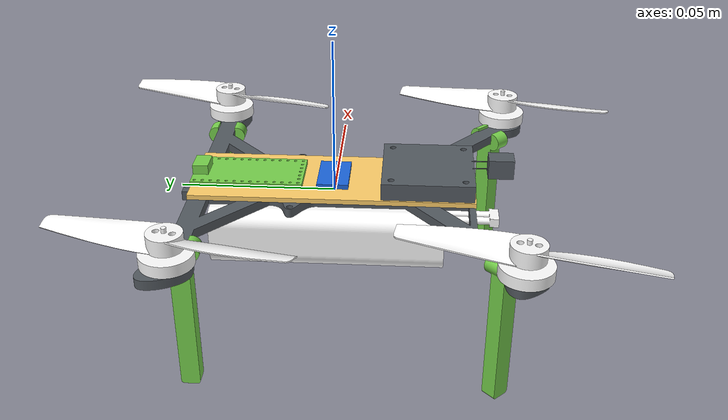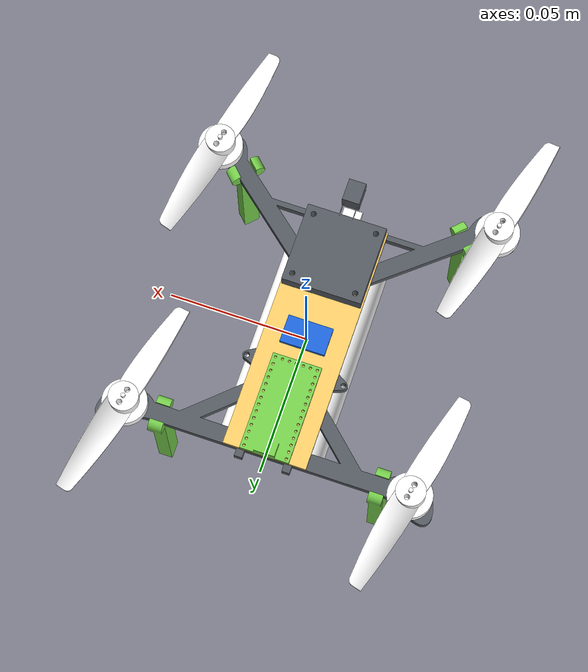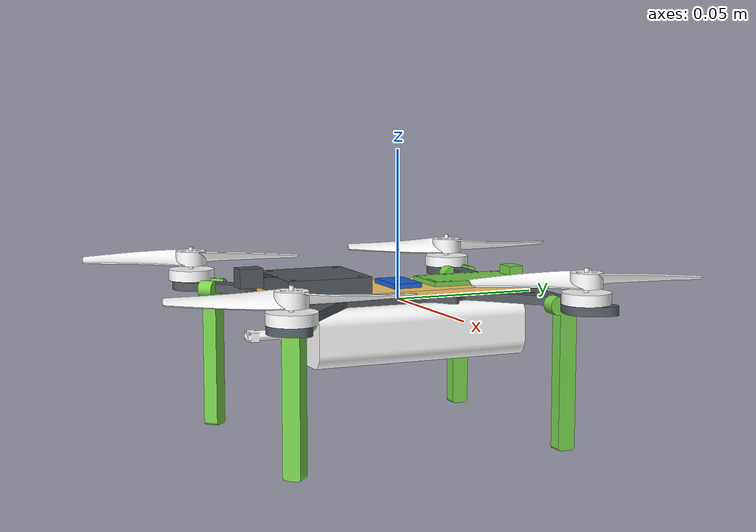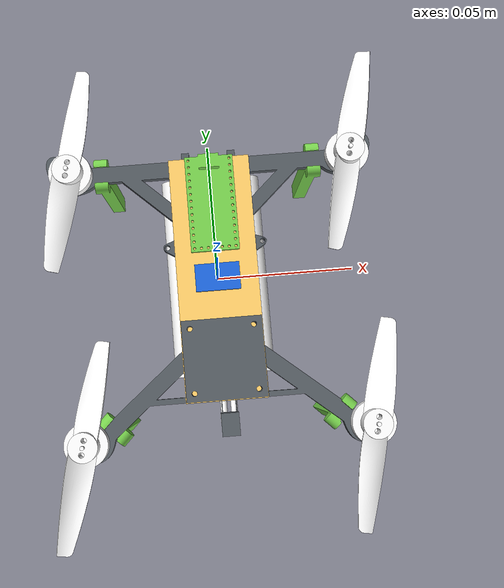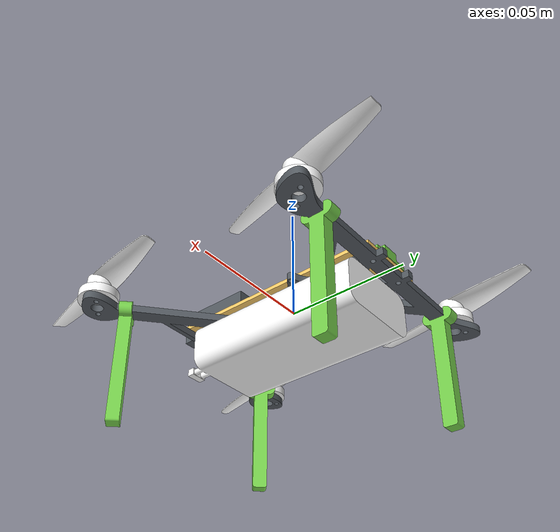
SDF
<?xml version="1.0" ?>
<sdf version='1.11'>
  <model name='drone'>
    <link name='root'>
      <inertial>
        <pose>-3.1045139736423291e-05 -0.0024829753933657832 -0.0049944875129489617 0 0 0</pose>
        <mass>0.100646976</mass>
        <inertia>
          <ixx>0.000106358310104841</ixx>
          <ixy>8.8870867283404449e-08</ixy>
          <ixz>-6.3492571418337586e-08</ixz>
          <iyy>6.1792029157155349e-05</iyy>
          <iyz>3.2288075699432942e-06</iyz>
          <izz>0.00014803367717369369</izz>
        </inertia>
      </inertial>
      <!-- Simple prisms for contact: one per leg, one around the frame,
           battery, motors and electronics. -->
      <collision name='leg_1_collision'>
        <pose>-0.0404 0.0420 -0.0215 0 0 0</pose>
        <geometry><box><size>0.0050 0.0129 0.0510</size></box></geometry>
      </collision>
      <collision name='leg_2_collision'>
        <pose>-0.0411 -0.0521 -0.0215 0 0 0</pose>
        <geometry><box><size>0.0126 0.0126 0.0510</size></box></geometry>
      </collision>
      <collision name='leg_3_collision'>
        <pose>0.0390 0.0420 -0.0215 0 0 0</pose>
        <geometry><box><size>0.0050 0.0129 0.0510</size></box></geometry>
      </collision>
      <collision name='leg_4_collision'>
        <pose>0.0406 -0.0521 -0.0215 0 0 0</pose>
        <geometry><box><size>0.0126 0.0126 0.0510</size></box></geometry>
      </collision>
      <collision name='body_collision'>
        <pose>0.0000 -0.0070 -0.0022 0 0 0</pose>
        <geometry><box><size>0.1215 0.1151 0.0335</size></box></geometry>
      </collision>
      <visual name='root_fixed_joint_lump__base_link_visual'>
        <pose>4.7435500000001852e-06 -0.0054375100000000004 0.0030000000000000001 0 0 0</pose>
        <geometry>
          <mesh>
            <scale>1 1 1</scale>
            <uri>model://drone/meshes/base_link.stl</uri>
          </mesh>
        </geometry>
        <material>
          <diffuse>0.328431249 0.352941275 0.377451241 1</diffuse>
          <ambient>0.328431249 0.352941275 0.377451241 1</ambient>
        </material>
      </visual>
      <visual name='root_fixed_joint_lump__2s_battery_visual_1'>
        <pose>4.7435499999984106e-06 0.0015624900000000021 -0.019 0 0 0</pose>
        <geometry>
          <mesh>
            <scale>1 1 1</scale>
            <uri>model://drone/meshes/_2S_Battery.stl</uri>
          </mesh>
        </geometry>
        <material>
          <diffuse>1 1 1 1</diffuse>
          <ambient>1 1 1 1</ambient>
        </material>
      </visual>
      <visual name='root_fixed_joint_lump__leg_visual_2'>
        <pose>-0.037908836499797448 0.038994090816366428 -0.047511590816666727 1.5708 5.5511151231257827e-17 -1.5708</pose>
        <geometry>
          <mesh>
            <scale>1 1 1</scale>
            <uri>model://drone/meshes/Leg.stl</uri>
          </mesh>
        </geometry>
        <material>
          <diffuse>0.465686262 0.818627477 0.299019992 1</diffuse>
          <ambient>0.465686262 0.818627477 0.299019992 1</ambient>
        </material>
      </visual>
      <visual name='root_fixed_joint_lump__leg_1_visual_3'>
        <pose>-0.037236889241565888 -0.05246212935094758 -0.047511590816666727 1.5708 -2.2204460492503131e-16 -0.78539800000000004</pose>
        <geometry>
          <mesh>
            <scale>1 1 1</scale>
            <uri>model://drone/meshes/Leg.stl</uri>
          </mesh>
        </geometry>
        <material>
          <diffuse>0.465686262 0.818627477 0.299019992 1</diffuse>
          <ambient>0.465686262 0.818627477 0.299019992 1</ambient>
        </material>
      </visual>
      <visual name='root_fixed_joint_lump__leg_3_visual_4'>
        <pose>0.036496014460566828 0.044994090816325959 -0.047511590816666727 1.5708 -5.5511151231257827e-17 1.5708</pose>
        <geometry>
          <mesh>
            <scale>1 1 1</scale>
            <uri>model://drone/meshes/Leg.stl</uri>
          </mesh>
        </geometry>
        <material>
          <diffuse>0.465686262 0.818627477 0.299019992 1</diffuse>
          <ambient>0.465686262 0.818627477 0.299019992 1</ambient>
        </material>
      </visual>
      <visual name='root_fixed_joint_lump__leg_2_visual_5'>
        <pose>0.040282187476873017 -0.055997912287613978 -0.047511590816666727 1.5708 8.3266726846886741e-16 -2.3561899999999998</pose>
        <geometry>
          <mesh>
            <scale>1 1 1</scale>
            <uri>model://drone/meshes/Leg.stl</uri>
          </mesh>
        </geometry>
        <material>
          <diffuse>0.465686262 0.818627477 0.299019992 1</diffuse>
          <ambient>0.465686262 0.818627477 0.299019992 1</ambient>
        </material>
      </visual>
      <visual name='root_fixed_joint_lump__motor_1_visual_6'>
        <pose>-0.051445299999999999 0.042608399999999998 0.0030000000000000001 0 0 0</pose>
        <geometry>
          <mesh>
            <scale>1 1 1</scale>
            <uri>model://drone/meshes/Motor.stl</uri>
          </mesh>
        </geometry>
        <material>
          <diffuse>1 1 1 1</diffuse>
          <ambient>1 1 1 1</ambient>
        </material>
      </visual>
      <visual name='root_fixed_joint_lump__motor_visual_7'>
        <pose>-0.051445299999999999 -0.0566416 0.0030000000000000001 0 0 0</pose>
        <geometry>
          <mesh>
            <scale>1 1 1</scale>
            <uri>model://drone/meshes/Motor.stl</uri>
          </mesh>
        </geometry>
        <material>
          <diffuse>1 1 1 1</diffuse>
          <ambient>1 1 1 1</ambient>
        </material>
      </visual>
      <visual name='root_fixed_joint_lump__motor_3_visual_8'>
        <pose>0.051454699999999999 0.042608399999999998 0.0030000000000000001 0 0 0</pose>
        <geometry>
          <mesh>
            <scale>1 1 1</scale>
            <uri>model://drone/meshes/Motor.stl</uri>
          </mesh>
        </geometry>
        <material>
          <diffuse>1 1 1 1</diffuse>
          <ambient>1 1 1 1</ambient>
        </material>
      </visual>
      <visual name='root_fixed_joint_lump__motor_2_visual_9'>
        <pose>0.051454699999999999 -0.0566416 0.0030000000000000001 0 0 0</pose>
        <geometry>
          <mesh>
            <scale>1 1 1</scale>
            <uri>model://drone/meshes/Motor.stl</uri>
          </mesh>
        </geometry>
        <material>
          <diffuse>1 1 1 1</diffuse>
          <ambient>1 1 1 1</ambient>
        </material>
      </visual>
      <visual name='root_fixed_joint_lump__custom_pcb_visual_10'>
        <pose>4.7435500000008679e-06 0.0001039149999999981 0.00298 0 0 0</pose>
        <geometry>
          <mesh>
            <scale>1 1 1</scale>
            <uri>model://drone/meshes/Custom_PCB.stl</uri>
          </mesh>
        </geometry>
        <material>
          <diffuse>1 0.808823764 0.411765009 1</diffuse>
          <ambient>1 0.808823764 0.411765009 1</ambient>
        </material>
      </visual>
      <visual name='root_fixed_joint_lump__esc_visual_11'>
        <pose>4.7435500000101471e-06 -0.029896084999999999 0.0045500000000000002 0 0 0</pose>
        <geometry>
          <mesh>
            <scale>1 1 1</scale>
            <uri>model://drone/meshes/ESC.stl</uri>
          </mesh>
        </geometry>
        <material>
          <diffuse>0.328431249 0.352941275 0.377451241 1</diffuse>
          <ambient>0.328431249 0.352941275 0.377451241 1</ambient>
        </material>
      </visual>
      <visual name='root_fixed_joint_lump__imu_visual_12'>
        <pose>4.7435500000010449e-06 0.0001039149999999989 0.0045500000000000002 0 0 0</pose>
        <geometry>
          <mesh>
            <scale>1 1 1</scale>
            <uri>model://drone/meshes/IMU.stl</uri>
          </mesh>
        </geometry>
        <material>
          <diffuse>0.107843123 0.397058755 0.862744987 1</diffuse>
          <ambient>0.107843123 0.397058755 0.862744987 1</ambient>
        </material>
      </visual>
      <visual name='root_fixed_joint_lump__mcu_visual_13'>
        <pose>4.7435499999930947e-06 0.027496987000000001 0.0045500000000000002 0 0 0</pose>
        <geometry>
          <mesh>
            <scale>1 1 1</scale>
            <uri>model://drone/meshes/MCU.stl</uri>
          </mesh>
        </geometry>
        <material>
          <diffuse>0.465686262 0.818627477 0.299019992 1</diffuse>
          <ambient>0.465686262 0.818627477 0.299019992 1</ambient>
        </material>
      </visual>
    </link>
    <joint name='dof_motor_prop_1' type='revolute'>
      <pose relative_to='root'>-0.051445300000000041 0.042528406900000003 0.010500000000000001 3.1415899999999999 0 -4.7184499999999998e-16</pose>
      <parent>root</parent>
      <child>prop__1_</child>
      <axis>
        <xyz>0 0 -1</xyz>
        <limit>
          <lower>-inf</lower>
          <upper>inf</upper>
        </limit>
        <dynamics>
          <spring_reference>0</spring_reference>
          <spring_stiffness>0</spring_stiffness>
        </dynamics>
      </axis>
    </joint>
    <link name='prop__1_'>
      <pose relative_to='dof_motor_prop_1'>0 0 0 0 0 0</pose>
      <inertial>
        <pose>0.018199699999999999 -0.00027293599999999999 -0.00024742399999999999 0 0 0</pose>
        <mass>1.21853e-07</mass>
        <inertia>
          <ixx>8.5680899999999999e-13</ixx>
          <ixy>1.23767e-13</ixy>
          <ixz>-1.0460399999999999e-14</ixz>
          <iyy>1.14285e-11</iyy>
          <iyz>2.6944000000000001e-13</iyz>
          <izz>1.2066500000000001e-11</izz>
        </inertia>
      </inertial>
      <visual name='prop__1__visual'>
        <pose>0 0 0 0 0 1.7970600000000001</pose>
        <geometry>
          <mesh>
            <scale>1 1 1</scale>
            <uri>model://drone/meshes/_.stl</uri>
          </mesh>
        </geometry>
        <material>
          <diffuse>1 1 1 1</diffuse>
          <ambient>1 1 1 1</ambient>
        </material>
      </visual>
      <visual name='prop__1__visual_1'>
        <pose>0 0 0 0 0 1.7970600000000001</pose>
        <geometry>
          <mesh>
            <scale>1 1 1</scale>
            <uri>model://drone/meshes/__1.stl</uri>
          </mesh>
        </geometry>
        <material>
          <diffuse>1 1 1 1</diffuse>
          <ambient>1 1 1 1</ambient>
        </material>
      </visual>
      <visual name='prop__1__visual_2'>
        <pose>0 0 0 0 0 1.7970600000000001</pose>
        <geometry>
          <mesh>
            <scale>1 1 1</scale>
            <uri>model://drone/meshes/__2.stl</uri>
          </mesh>
        </geometry>
        <material>
          <diffuse>1 1 1 1</diffuse>
          <ambient>1 1 1 1</ambient>
        </material>
      </visual>
    </link>
    <joint name='dof_motor_prop_2' type='revolute'>
      <pose relative_to='root'>-0.051445300000000041 -0.056721593100000002 0.010625000000000001 0 0 1.9428900000000001e-16</pose>
      <parent>root</parent>
      <child>prop__2_</child>
      <axis>
        <xyz>0 0 1</xyz>
        <limit>
          <lower>-inf</lower>
          <upper>inf</upper>
        </limit>
        <dynamics>
          <spring_reference>0</spring_reference>
          <spring_stiffness>0</spring_stiffness>
        </dynamics>
      </axis>
    </joint>
    <link name='prop__2_'>
      <pose relative_to='dof_motor_prop_2'>0 0 0 0 0 0</pose>
      <inertial>
        <pose>0.018199699999999999 -0.00027293599999999999 -0.00024742399999999999 0 0 0</pose>
        <mass>1.21853e-07</mass>
        <inertia>
          <ixx>8.5680899999999999e-13</ixx>
          <ixy>1.23767e-13</ixy>
          <ixz>-1.0460399999999999e-14</ixz>
          <iyy>1.14285e-11</iyy>
          <iyz>2.6944000000000001e-13</iyz>
          <izz>1.2066500000000001e-11</izz>
        </inertia>
      </inertial>
      <visual name='prop__2__visual'>
        <pose>0 0 0 0 0 -1.7997300000000001</pose>
        <geometry>
          <mesh>
            <scale>1 1 1</scale>
            <uri>model://drone/meshes/_.stl</uri>
          </mesh>
        </geometry>
        <material>
          <diffuse>1 1 1 1</diffuse>
          <ambient>1 1 1 1</ambient>
        </material>
      </visual>
      <visual name='prop__2__visual_1'>
        <pose>0 0 0 0 0 -1.7997300000000001</pose>
        <geometry>
          <mesh>
            <scale>1 1 1</scale>
            <uri>model://drone/meshes/__1.stl</uri>
          </mesh>
        </geometry>
        <material>
          <diffuse>1 1 1 1</diffuse>
          <ambient>1 1 1 1</ambient>
        </material>
      </visual>
      <visual name='prop__2__visual_2'>
        <pose>0 0 0 0 0 -1.7997300000000001</pose>
        <geometry>
          <mesh>
            <scale>1 1 1</scale>
            <uri>model://drone/meshes/__2.stl</uri>
          </mesh>
        </geometry>
        <material>
          <diffuse>1 1 1 1</diffuse>
          <ambient>1 1 1 1</ambient>
        </material>
      </visual>
    </link>
    <joint name='dof_motor_prop_3' type='revolute'>
      <pose relative_to='root'>0.051454699999999971 0.042528406900000003 0.010625000000000001 0 0 0</pose>
      <parent>root</parent>
      <child>prop__3_</child>
      <axis>
        <xyz>0 0 1</xyz>
        <limit>
          <lower>-inf</lower>
          <upper>inf</upper>
        </limit>
        <dynamics>
          <spring_reference>0</spring_reference>
          <spring_stiffness>0</spring_stiffness>
        </dynamics>
      </axis>
    </joint>
    <link name='prop__3_'>
      <pose relative_to='dof_motor_prop_3'>0 0 0 0 0 0</pose>
      <inertial>
        <pose>0.018199699999999999 -0.00027293599999999999 -0.00024742399999999999 0 0 0</pose>
        <mass>1.21853e-07</mass>
        <inertia>
          <ixx>8.5680899999999999e-13</ixx>
          <ixy>1.23767e-13</ixy>
          <ixz>-1.0460399999999999e-14</ixz>
          <iyy>1.14285e-11</iyy>
          <iyz>2.6944000000000001e-13</iyz>
          <izz>1.2066500000000001e-11</izz>
        </inertia>
      </inertial>
      <visual name='prop__3__visual'>
        <pose>0 0 0 0 0 -1.7925</pose>
        <geometry>
          <mesh>
            <scale>1 1 1</scale>
            <uri>model://drone/meshes/_.stl</uri>
          </mesh>
        </geometry>
        <material>
          <diffuse>1 1 1 1</diffuse>
          <ambient>1 1 1 1</ambient>
        </material>
      </visual>
      <visual name='prop__3__visual_1'>
        <pose>0 0 0 0 0 -1.7925</pose>
        <geometry>
          <mesh>
            <scale>1 1 1</scale>
            <uri>model://drone/meshes/__1.stl</uri>
          </mesh>
        </geometry>
        <material>
          <diffuse>1 1 1 1</diffuse>
          <ambient>1 1 1 1</ambient>
        </material>
      </visual>
      <visual name='prop__3__visual_2'>
        <pose>0 0 0 0 0 -1.7925</pose>
        <geometry>
          <mesh>
            <scale>1 1 1</scale>
            <uri>model://drone/meshes/__2.stl</uri>
          </mesh>
        </geometry>
        <material>
          <diffuse>1 1 1 1</diffuse>
          <ambient>1 1 1 1</ambient>
        </material>
      </visual>
    </link>
    <joint name='dof_motor_prop_4' type='revolute'>
      <pose relative_to='root'>0.051454699999999971 -0.056721593100000002 0.010500000000000001 3.1415899999999999 9.4039548065783001e-38 1.9428900000000001e-16</pose>
      <parent>root</parent>
      <child>prop__4_</child>
      <axis>
        <xyz>0 0 -1</xyz>
        <limit>
          <lower>-inf</lower>
          <upper>inf</upper>
        </limit>
        <dynamics>
          <spring_reference>0</spring_reference>
          <spring_stiffness>0</spring_stiffness>
        </dynamics>
      </axis>
    </joint>
    <link name='prop__4_'>
      <pose relative_to='dof_motor_prop_4'>0 0 0 0 0 0</pose>
      <inertial>
        <pose>0.018199699999999999 -0.00027293599999999999 -0.00024742399999999999 0 0 0</pose>
        <mass>1.21853e-07</mass>
        <inertia>
          <ixx>8.5680899999999999e-13</ixx>
          <ixy>1.23767e-13</ixy>
          <ixz>-1.0460399999999999e-14</ixz>
          <iyy>1.14285e-11</iyy>
          <iyz>2.6944000000000001e-13</iyz>
          <izz>1.2066500000000001e-11</izz>
        </inertia>
      </inertial>
      <visual name='prop__4__visual'>
        <pose>0 0 0 0 0 1.79515</pose>
        <geometry>
          <mesh>
            <scale>1 1 1</scale>
            <uri>model://drone/meshes/_.stl</uri>
          </mesh>
        </geometry>
        <material>
          <diffuse>1 1 1 1</diffuse>
          <ambient>1 1 1 1</ambient>
        </material>
      </visual>
      <visual name='prop__4__visual_1'>
        <pose>0 0 0 0 0 1.79515</pose>
        <geometry>
          <mesh>
            <scale>1 1 1</scale>
            <uri>model://drone/meshes/__1.stl</uri>
          </mesh>
        </geometry>
        <material>
          <diffuse>1 1 1 1</diffuse>
          <ambient>1 1 1 1</ambient>
        </material>
      </visual>
      <visual name='prop__4__visual_2'>
        <pose>0 0 0 0 0 1.79515</pose>
        <geometry>
          <mesh>
            <scale>1 1 1</scale>
            <uri>model://drone/meshes/__2.stl</uri>
          </mesh>
        </geometry>
        <material>
          <diffuse>1 1 1 1</diffuse>
          <ambient>1 1 1 1</ambient>
        </material>
      </visual>
    </link>
    <frame name='fix_battery' attached_to='base_link'>
      <pose>4.7435499999999997e-06 0.0015624899999999999 0 0 0 0</pose>
    </frame>
    <frame name='2s_battery' attached_to='fix_battery'>
      <pose>0 0 0 0 0 0</pose>
    </frame>
    <frame name='fix_leg1' attached_to='base_link'>
      <pose>-0.040409 0.041994099999999999 0 1.5708 5.5511151231257827e-17 -1.5708</pose>
    </frame>
    <frame name='leg' attached_to='fix_leg1'>
      <pose>0 0 0 0 0 0</pose>
    </frame>
    <frame name='fix_leg2' attached_to='base_link'>
      <pose>-0.041126099999999999 -0.052108700000000001 0 1.5708 -5.5511151231257827e-17 -0.78539800000000004</pose>
    </frame>
    <frame name='leg_1' attached_to='fix_leg2'>
      <pose>0 0 0 0 0 0</pose>
    </frame>
    <frame name='fix_leg3' attached_to='base_link'>
      <pose>0.038996200000000002 0.041994099999999999 0 1.5708 -5.5511151231257827e-17 1.5708</pose>
    </frame>
    <frame name='leg_3' attached_to='fix_leg3'>
      <pose>0 0 0 0 0 0</pose>
    </frame>
    <frame name='fix_leg4' attached_to='base_link'>
      <pose>0.040635600000000001 -0.052108700000000001 0 1.5708 8.3266726846886741e-16 -2.3561899999999998</pose>
    </frame>
    <frame name='leg_2' attached_to='fix_leg4'>
      <pose>0 0 0 0 0 0</pose>
    </frame>
    <frame name='fix_motor_1' attached_to='base_link'>
      <pose>-0.051445299999999999 0.042608399999999998 0.0030000000000000001 0 0 0</pose>
    </frame>
    <frame name='motor_1' attached_to='fix_motor_1'>
      <pose>0 0 0 0 0 0</pose>
    </frame>
    <frame name='fix_motor_2' attached_to='base_link'>
      <pose>-0.051445299999999999 -0.0566416 0.0030000000000000001 0 0 0</pose>
    </frame>
    <frame name='motor' attached_to='fix_motor_2'>
      <pose>0 0 0 0 0 0</pose>
    </frame>
    <frame name='fix_motor_3' attached_to='base_link'>
      <pose>0.051454699999999999 0.042608399999999998 0.0030000000000000001 0 0 0</pose>
    </frame>
    <frame name='motor_3' attached_to='fix_motor_3'>
      <pose>0 0 0 0 0 0</pose>
    </frame>
    <frame name='fix_motor_4' attached_to='base_link'>
      <pose>0.051454699999999999 -0.0566416 0.0030000000000000001 0 0 0</pose>
    </frame>
    <frame name='motor_2' attached_to='fix_motor_4'>
      <pose>0 0 0 0 0 0</pose>
    </frame>
    <frame name='fix_esc' attached_to='custom_pcb'>
      <pose>1.0223700000000001e-17 -0.029999999999999999 0 0 0 0</pose>
    </frame>
    <frame name='esc' attached_to='fix_esc'>
      <pose>0 0 0 0 0 0</pose>
    </frame>
    <frame name='fix_imu' attached_to='custom_pcb'>
      <pose>0 -5.6920599999999998e-19 0 0 0 0</pose>
    </frame>
    <frame name='imu' attached_to='fix_imu'>
      <pose>0 0 0 0 0 0</pose>
    </frame>
    <frame name='fix_teensy' attached_to='custom_pcb'>
      <pose>-7.1235499999999994e-18 0.0275 0 0 0 0</pose>
    </frame>
    <frame name='mcu' attached_to='fix_teensy'>
      <pose>0 0 0 0 0 0</pose>
    </frame>
    <frame name='fix_pcb' attached_to='base_link'>
      <pose>4.7435499999999997e-06 0.000103915 0.0045500000000000002 0 0 0</pose>
    </frame>
    <frame name='custom_pcb' attached_to='fix_pcb'>
      <pose>0 0 0 0 0 0</pose>
    </frame>
    <frame name='mate_connector_1' attached_to='base_link'>
      <pose>-0.040409 0.041994099999999999 3.9031299999999997e-18 0 0 0</pose>
    </frame>
    <frame name='mate_connector_2' attached_to='base_link'>
      <pose>-0.036176399999999997 -0.047159 3.9031299999999997e-18 3.1415899999999999 0 -0.78539800000000004</pose>
    </frame>
    <frame name='mate_connector_3' attached_to='base_link'>
      <pose>0.038996200000000002 0.041994099999999999 3.9031299999999997e-18 3.1415899999999999 0 0</pose>
    </frame>
    <frame name='mate_connector_4' attached_to='base_link'>
      <pose>0.035685799999999997 -0.047159 3.9031299999999997e-18 3.1415899999999999 0 -0.78539800000000004</pose>
    </frame>
    <frame name='fix_base_link' attached_to='root'>
      <pose>1.855e-19 0 0 0 0 0</pose>
    </frame>
    <frame name='base_link' attached_to='fix_base_link'>
      <pose>0 0 0 0 0 0</pose>
    </frame>
  </model>
</sdf>
